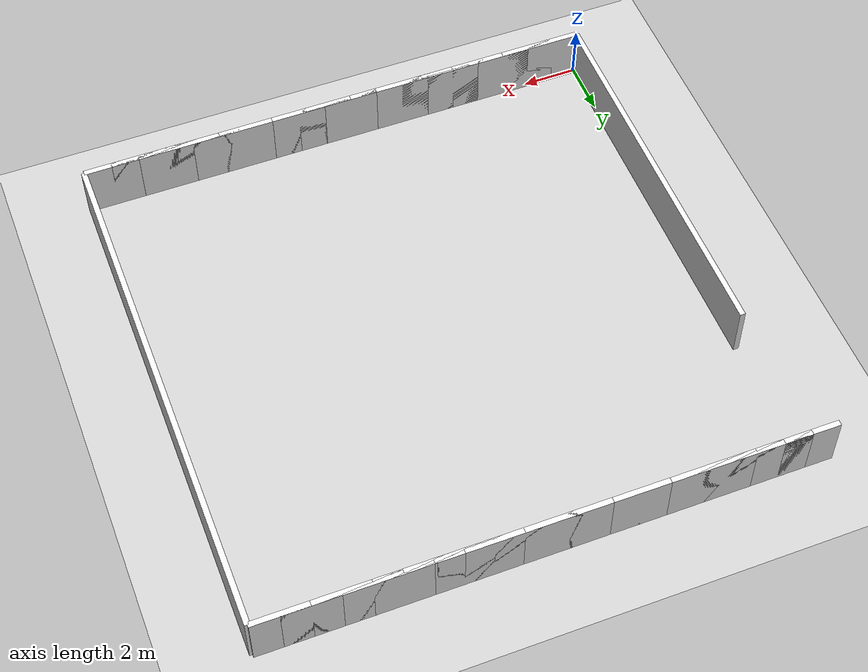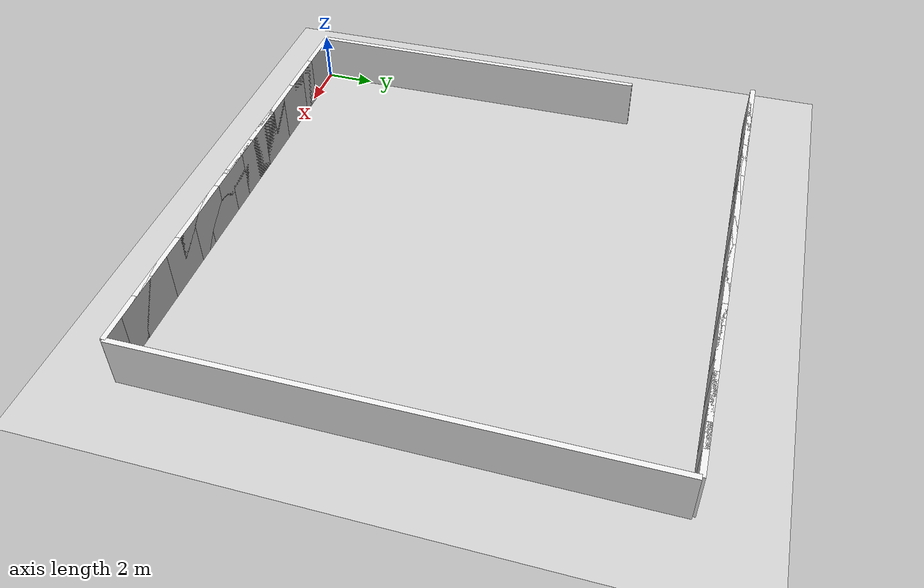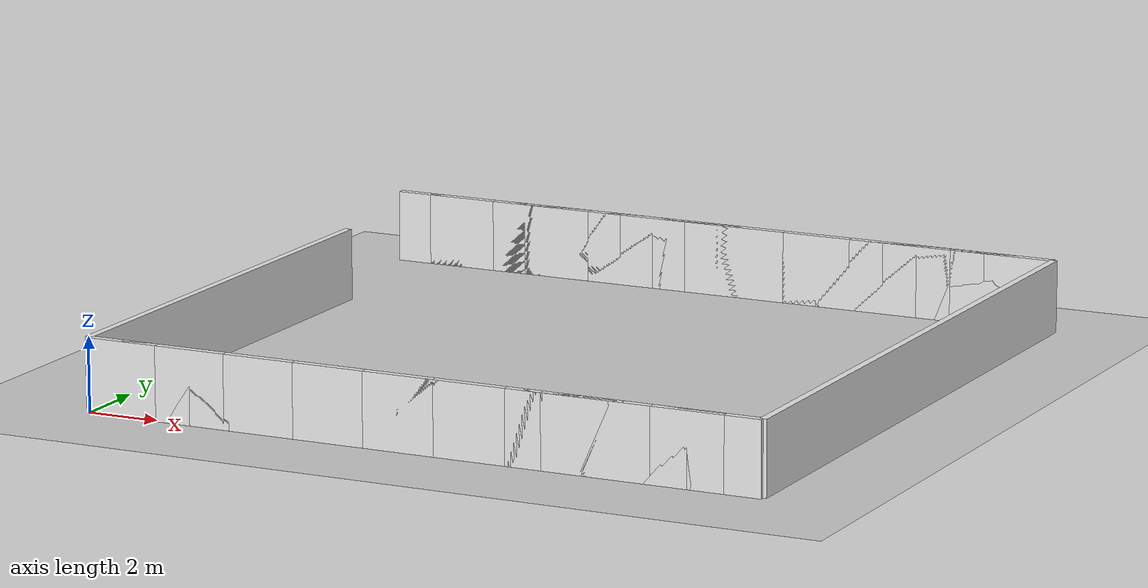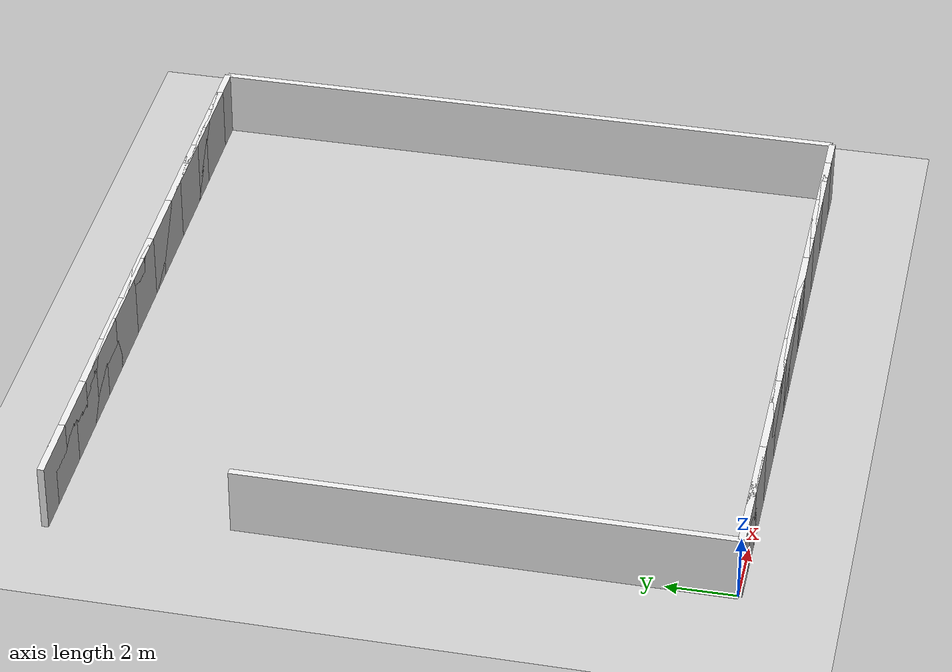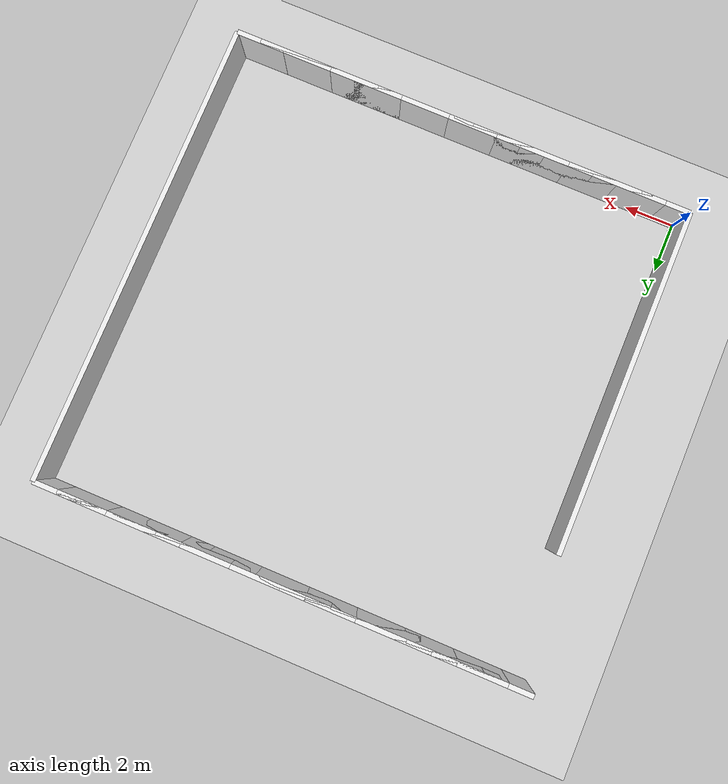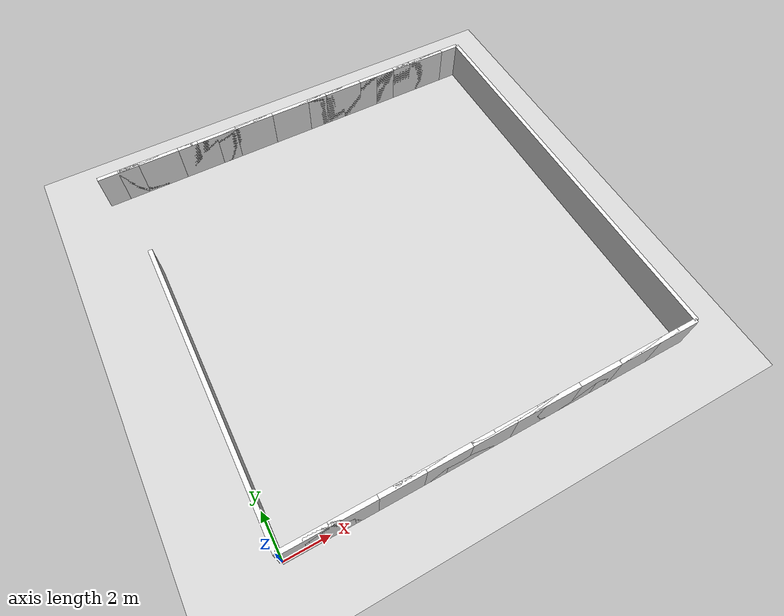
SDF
<sdf version="1.6">
 <world name="default">
  <scene><ambient>0.4 0.4 0.4 1</ambient><background>0.7 0.7 0.7 1</background><shadows>true</shadows></scene>
  <include><uri>model://sun</uri></include>
  <include><uri>model://ground_plane</uri></include>
  <physics type="ode">
   <gravity>0 0 -9.81</gravity>
   <real_time_update_rate>1000.0</real_time_update_rate>
   <max_step_size>0.001</max_step_size>
   <real_time_factor>1</real_time_factor>
   <ode>
    <solver>
     <type>quick</type>
     <iters>150</iters>
     <precon_iters>0</precon_iters>
     <sor>1.400000</sor>
     <use_dynamic_moi_rescaling>1</use_dynamic_moi_rescaling>
    </solver>
    <constraints>
     <cfm>0.00001</cfm>
     <erp>0.2</erp>
     <contact_max_correcting_vel>2000.000000</contact_max_correcting_vel>
     <contact_surface_layer>0.01000</contact_surface_layer>
    </constraints>
   </ode>
  </physics>
  <model name="box_0">
   <static>1</static>
   <pose>4.28626e-16 7 1 0 0 1.5708</pose>
   <link name="link">
    <collision name="collision"><geometry><box><size>14 0.2 2.000000</size></box></geometry></collision>
    <visual name="visual">
     <geometry><box><size>14 0.2 2.000000</size></box></geometry>
     <material>
      <script><uri>file://media/materials/scripts/gazebo.material</uri><name>Gazebo/White</name></script>
     </material>
    </visual>
   </link>
  </model>
  <model name="box_1">
   <static>1</static>
   <pose>0 19 1 0 0 0</pose>
   <link name="link">
    <collision name="collision"><geometry><box><size>2 0.2 2.000000</size></box></geometry></collision>
    <visual name="visual">
     <geometry><box><size>2 0.2 2.000000</size></box></geometry>
     <material>
      <script><uri>file://media/materials/scripts/gazebo.material</uri><name>Gazebo/White</name></script>
     </material>
    </visual>
   </link>
  </model>
  <model name="box_2">
   <static>1</static>
   <pose>1 0 1 0 0 0</pose>
   <link name="link">
    <collision name="collision"><geometry><box><size>2 0.2 2.000000</size></box></geometry></collision>
    <visual name="visual">
     <geometry><box><size>2 0.2 2.000000</size></box></geometry>
     <material>
      <script><uri>file://media/materials/scripts/gazebo.material</uri><name>Gazebo/White</name></script>
     </material>
    </visual>
   </link>
  </model>
  <model name="box_3">
   <static>1</static>
   <pose>1 19 1 0 0 0</pose>
   <link name="link">
    <collision name="collision"><geometry><box><size>2 0.2 2.000000</size></box></geometry></collision>
    <visual name="visual">
     <geometry><box><size>2 0.2 2.000000</size></box></geometry>
     <material>
      <script><uri>file://media/materials/scripts/gazebo.material</uri><name>Gazebo/White</name></script>
     </material>
    </visual>
   </link>
  </model>
  <model name="box_4">
   <static>1</static>
   <pose>2 0 1 0 0 0</pose>
   <link name="link">
    <collision name="collision"><geometry><box><size>2 0.2 2.000000</size></box></geometry></collision>
    <visual name="visual">
     <geometry><box><size>2 0.2 2.000000</size></box></geometry>
     <material>
      <script><uri>file://media/materials/scripts/gazebo.material</uri><name>Gazebo/White</name></script>
     </material>
    </visual>
   </link>
  </model>
  <model name="box_5">
   <static>1</static>
   <pose>2 19 1 0 0 0</pose>
   <link name="link">
    <collision name="collision"><geometry><box><size>2 0.2 2.000000</size></box></geometry></collision>
    <visual name="visual">
     <geometry><box><size>2 0.2 2.000000</size></box></geometry>
     <material>
      <script><uri>file://media/materials/scripts/gazebo.material</uri><name>Gazebo/White</name></script>
     </material>
    </visual>
   </link>
  </model>
  <model name="box_6">
   <static>1</static>
   <pose>3 0 1 0 0 0</pose>
   <link name="link">
    <collision name="collision"><geometry><box><size>2 0.2 2.000000</size></box></geometry></collision>
    <visual name="visual">
     <geometry><box><size>2 0.2 2.000000</size></box></geometry>
     <material>
      <script><uri>file://media/materials/scripts/gazebo.material</uri><name>Gazebo/White</name></script>
     </material>
    </visual>
   </link>
  </model>
  <model name="box_7">
   <static>1</static>
   <pose>3 19 1 0 0 0</pose>
   <link name="link">
    <collision name="collision"><geometry><box><size>2 0.2 2.000000</size></box></geometry></collision>
    <visual name="visual">
     <geometry><box><size>2 0.2 2.000000</size></box></geometry>
     <material>
      <script><uri>file://media/materials/scripts/gazebo.material</uri><name>Gazebo/White</name></script>
     </material>
    </visual>
   </link>
  </model>
  <model name="box_8">
   <static>1</static>
   <pose>4 0 1 0 0 0</pose>
   <link name="link">
    <collision name="collision"><geometry><box><size>2 0.2 2.000000</size></box></geometry></collision>
    <visual name="visual">
     <geometry><box><size>2 0.2 2.000000</size></box></geometry>
     <material>
      <script><uri>file://media/materials/scripts/gazebo.material</uri><name>Gazebo/White</name></script>
     </material>
    </visual>
   </link>
  </model>
  <model name="box_9">
   <static>1</static>
   <pose>4 19 1 0 0 0</pose>
   <link name="link">
    <collision name="collision"><geometry><box><size>2 0.2 2.000000</size></box></geometry></collision>
    <visual name="visual">
     <geometry><box><size>2 0.2 2.000000</size></box></geometry>
     <material>
      <script><uri>file://media/materials/scripts/gazebo.material</uri><name>Gazebo/White</name></script>
     </material>
    </visual>
   </link>
  </model>
  <model name="box_10">
   <static>1</static>
   <pose>5 0 1 0 0 0</pose>
   <link name="link">
    <collision name="collision"><geometry><box><size>2 0.2 2.000000</size></box></geometry></collision>
    <visual name="visual">
     <geometry><box><size>2 0.2 2.000000</size></box></geometry>
     <material>
      <script><uri>file://media/materials/scripts/gazebo.material</uri><name>Gazebo/White</name></script>
     </material>
    </visual>
   </link>
  </model>
  <model name="box_11">
   <static>1</static>
   <pose>5 19 1 0 0 0</pose>
   <link name="link">
    <collision name="collision"><geometry><box><size>2 0.2 2.000000</size></box></geometry></collision>
    <visual name="visual">
     <geometry><box><size>2 0.2 2.000000</size></box></geometry>
     <material>
      <script><uri>file://media/materials/scripts/gazebo.material</uri><name>Gazebo/White</name></script>
     </material>
    </visual>
   </link>
  </model>
  <model name="box_12">
   <static>1</static>
   <pose>6 0 1 0 0 0</pose>
   <link name="link">
    <collision name="collision"><geometry><box><size>2 0.2 2.000000</size></box></geometry></collision>
    <visual name="visual">
     <geometry><box><size>2 0.2 2.000000</size></box></geometry>
     <material>
      <script><uri>file://media/materials/scripts/gazebo.material</uri><name>Gazebo/White</name></script>
     </material>
    </visual>
   </link>
  </model>
  <model name="box_13">
   <static>1</static>
   <pose>6 19 1 0 0 0</pose>
   <link name="link">
    <collision name="collision"><geometry><box><size>2 0.2 2.000000</size></box></geometry></collision>
    <visual name="visual">
     <geometry><box><size>2 0.2 2.000000</size></box></geometry>
     <material>
      <script><uri>file://media/materials/scripts/gazebo.material</uri><name>Gazebo/White</name></script>
     </material>
    </visual>
   </link>
  </model>
  <model name="box_14">
   <static>1</static>
   <pose>7 0 1 0 0 0</pose>
   <link name="link">
    <collision name="collision"><geometry><box><size>2 0.2 2.000000</size></box></geometry></collision>
    <visual name="visual">
     <geometry><box><size>2 0.2 2.000000</size></box></geometry>
     <material>
      <script><uri>file://media/materials/scripts/gazebo.material</uri><name>Gazebo/White</name></script>
     </material>
    </visual>
   </link>
  </model>
  <model name="box_15">
   <static>1</static>
   <pose>7 19 1 0 0 0</pose>
   <link name="link">
    <collision name="collision"><geometry><box><size>2 0.2 2.000000</size></box></geometry></collision>
    <visual name="visual">
     <geometry><box><size>2 0.2 2.000000</size></box></geometry>
     <material>
      <script><uri>file://media/materials/scripts/gazebo.material</uri><name>Gazebo/White</name></script>
     </material>
    </visual>
   </link>
  </model>
  <model name="box_16">
   <static>1</static>
   <pose>8 0 1 0 0 0</pose>
   <link name="link">
    <collision name="collision"><geometry><box><size>2 0.2 2.000000</size></box></geometry></collision>
    <visual name="visual">
     <geometry><box><size>2 0.2 2.000000</size></box></geometry>
     <material>
      <script><uri>file://media/materials/scripts/gazebo.material</uri><name>Gazebo/White</name></script>
     </material>
    </visual>
   </link>
  </model>
  <model name="box_17">
   <static>1</static>
   <pose>8 19 1 0 0 0</pose>
   <link name="link">
    <collision name="collision"><geometry><box><size>2 0.2 2.000000</size></box></geometry></collision>
    <visual name="visual">
     <geometry><box><size>2 0.2 2.000000</size></box></geometry>
     <material>
      <script><uri>file://media/materials/scripts/gazebo.material</uri><name>Gazebo/White</name></script>
     </material>
    </visual>
   </link>
  </model>
  <model name="box_18">
   <static>1</static>
   <pose>9 0 1 0 0 0</pose>
   <link name="link">
    <collision name="collision"><geometry><box><size>2 0.2 2.000000</size></box></geometry></collision>
    <visual name="visual">
     <geometry><box><size>2 0.2 2.000000</size></box></geometry>
     <material>
      <script><uri>file://media/materials/scripts/gazebo.material</uri><name>Gazebo/White</name></script>
     </material>
    </visual>
   </link>
  </model>
  <model name="box_19">
   <static>1</static>
   <pose>9 19 1 0 0 0</pose>
   <link name="link">
    <collision name="collision"><geometry><box><size>2 0.2 2.000000</size></box></geometry></collision>
    <visual name="visual">
     <geometry><box><size>2 0.2 2.000000</size></box></geometry>
     <material>
      <script><uri>file://media/materials/scripts/gazebo.material</uri><name>Gazebo/White</name></script>
     </material>
    </visual>
   </link>
  </model>
  <model name="box_20">
   <static>1</static>
   <pose>10 0 1 0 0 0</pose>
   <link name="link">
    <collision name="collision"><geometry><box><size>2 0.2 2.000000</size></box></geometry></collision>
    <visual name="visual">
     <geometry><box><size>2 0.2 2.000000</size></box></geometry>
     <material>
      <script><uri>file://media/materials/scripts/gazebo.material</uri><name>Gazebo/White</name></script>
     </material>
    </visual>
   </link>
  </model>
  <model name="box_21">
   <static>1</static>
   <pose>10 19 1 0 0 0</pose>
   <link name="link">
    <collision name="collision"><geometry><box><size>2 0.2 2.000000</size></box></geometry></collision>
    <visual name="visual">
     <geometry><box><size>2 0.2 2.000000</size></box></geometry>
     <material>
      <script><uri>file://media/materials/scripts/gazebo.material</uri><name>Gazebo/White</name></script>
     </material>
    </visual>
   </link>
  </model>
  <model name="box_22">
   <static>1</static>
   <pose>11 0 1 0 0 0</pose>
   <link name="link">
    <collision name="collision"><geometry><box><size>2 0.2 2.000000</size></box></geometry></collision>
    <visual name="visual">
     <geometry><box><size>2 0.2 2.000000</size></box></geometry>
     <material>
      <script><uri>file://media/materials/scripts/gazebo.material</uri><name>Gazebo/White</name></script>
     </material>
    </visual>
   </link>
  </model>
  <model name="box_23">
   <static>1</static>
   <pose>11 19 1 0 0 0</pose>
   <link name="link">
    <collision name="collision"><geometry><box><size>2 0.2 2.000000</size></box></geometry></collision>
    <visual name="visual">
     <geometry><box><size>2 0.2 2.000000</size></box></geometry>
     <material>
      <script><uri>file://media/materials/scripts/gazebo.material</uri><name>Gazebo/White</name></script>
     </material>
    </visual>
   </link>
  </model>
  <model name="box_24">
   <static>1</static>
   <pose>12 0 1 0 0 0</pose>
   <link name="link">
    <collision name="collision"><geometry><box><size>2 0.2 2.000000</size></box></geometry></collision>
    <visual name="visual">
     <geometry><box><size>2 0.2 2.000000</size></box></geometry>
     <material>
      <script><uri>file://media/materials/scripts/gazebo.material</uri><name>Gazebo/White</name></script>
     </material>
    </visual>
   </link>
  </model>
  <model name="box_25">
   <static>1</static>
   <pose>12 19 1 0 0 0</pose>
   <link name="link">
    <collision name="collision"><geometry><box><size>2 0.2 2.000000</size></box></geometry></collision>
    <visual name="visual">
     <geometry><box><size>2 0.2 2.000000</size></box></geometry>
     <material>
      <script><uri>file://media/materials/scripts/gazebo.material</uri><name>Gazebo/White</name></script>
     </material>
    </visual>
   </link>
  </model>
  <model name="box_26">
   <static>1</static>
   <pose>13 0 1 0 0 0</pose>
   <link name="link">
    <collision name="collision"><geometry><box><size>2 0.2 2.000000</size></box></geometry></collision>
    <visual name="visual">
     <geometry><box><size>2 0.2 2.000000</size></box></geometry>
     <material>
      <script><uri>file://media/materials/scripts/gazebo.material</uri><name>Gazebo/White</name></script>
     </material>
    </visual>
   </link>
  </model>
  <model name="box_27">
   <static>1</static>
   <pose>13 19 1 0 0 0</pose>
   <link name="link">
    <collision name="collision"><geometry><box><size>2 0.2 2.000000</size></box></geometry></collision>
    <visual name="visual">
     <geometry><box><size>2 0.2 2.000000</size></box></geometry>
     <material>
      <script><uri>file://media/materials/scripts/gazebo.material</uri><name>Gazebo/White</name></script>
     </material>
    </visual>
   </link>
  </model>
  <model name="box_28">
   <static>1</static>
   <pose>14 0 1 0 0 0</pose>
   <link name="link">
    <collision name="collision"><geometry><box><size>2 0.2 2.000000</size></box></geometry></collision>
    <visual name="visual">
     <geometry><box><size>2 0.2 2.000000</size></box></geometry>
     <material>
      <script><uri>file://media/materials/scripts/gazebo.material</uri><name>Gazebo/White</name></script>
     </material>
    </visual>
   </link>
  </model>
  <model name="box_29">
   <static>1</static>
   <pose>14 19 1 0 0 0</pose>
   <link name="link">
    <collision name="collision"><geometry><box><size>2 0.2 2.000000</size></box></geometry></collision>
    <visual name="visual">
     <geometry><box><size>2 0.2 2.000000</size></box></geometry>
     <material>
      <script><uri>file://media/materials/scripts/gazebo.material</uri><name>Gazebo/White</name></script>
     </material>
    </visual>
   </link>
  </model>
  <model name="box_30">
   <static>1</static>
   <pose>15 0 1 0 0 0</pose>
   <link name="link">
    <collision name="collision"><geometry><box><size>2 0.2 2.000000</size></box></geometry></collision>
    <visual name="visual">
     <geometry><box><size>2 0.2 2.000000</size></box></geometry>
     <material>
      <script><uri>file://media/materials/scripts/gazebo.material</uri><name>Gazebo/White</name></script>
     </material>
    </visual>
   </link>
  </model>
  <model name="box_31">
   <static>1</static>
   <pose>15 19 1 0 0 0</pose>
   <link name="link">
    <collision name="collision"><geometry><box><size>2 0.2 2.000000</size></box></geometry></collision>
    <visual name="visual">
     <geometry><box><size>2 0.2 2.000000</size></box></geometry>
     <material>
      <script><uri>file://media/materials/scripts/gazebo.material</uri><name>Gazebo/White</name></script>
     </material>
    </visual>
   </link>
  </model>
  <model name="box_32">
   <static>1</static>
   <pose>16 0 1 0 0 0</pose>
   <link name="link">
    <collision name="collision"><geometry><box><size>2 0.2 2.000000</size></box></geometry></collision>
    <visual name="visual">
     <geometry><box><size>2 0.2 2.000000</size></box></geometry>
     <material>
      <script><uri>file://media/materials/scripts/gazebo.material</uri><name>Gazebo/White</name></script>
     </material>
    </visual>
   </link>
  </model>
  <model name="box_33">
   <static>1</static>
   <pose>16 19 1 0 0 0</pose>
   <link name="link">
    <collision name="collision"><geometry><box><size>2 0.2 2.000000</size></box></geometry></collision>
    <visual name="visual">
     <geometry><box><size>2 0.2 2.000000</size></box></geometry>
     <material>
      <script><uri>file://media/materials/scripts/gazebo.material</uri><name>Gazebo/White</name></script>
     </material>
    </visual>
   </link>
  </model>
  <model name="box_34">
   <static>1</static>
   <pose>17 0 1 0 0 0</pose>
   <link name="link">
    <collision name="collision"><geometry><box><size>2 0.2 2.000000</size></box></geometry></collision>
    <visual name="visual">
     <geometry><box><size>2 0.2 2.000000</size></box></geometry>
     <material>
      <script><uri>file://media/materials/scripts/gazebo.material</uri><name>Gazebo/White</name></script>
     </material>
    </visual>
   </link>
  </model>
  <model name="box_35">
   <static>1</static>
   <pose>17 19 1 0 0 0</pose>
   <link name="link">
    <collision name="collision"><geometry><box><size>2 0.2 2.000000</size></box></geometry></collision>
    <visual name="visual">
     <geometry><box><size>2 0.2 2.000000</size></box></geometry>
     <material>
      <script><uri>file://media/materials/scripts/gazebo.material</uri><name>Gazebo/White</name></script>
     </material>
    </visual>
   </link>
  </model>
  <model name="box_36">
   <static>1</static>
   <pose>18 0 1 0 0 0</pose>
   <link name="link">
    <collision name="collision"><geometry><box><size>2 0.2 2.000000</size></box></geometry></collision>
    <visual name="visual">
     <geometry><box><size>2 0.2 2.000000</size></box></geometry>
     <material>
      <script><uri>file://media/materials/scripts/gazebo.material</uri><name>Gazebo/White</name></script>
     </material>
    </visual>
   </link>
  </model>
  <model name="box_37">
   <static>1</static>
   <pose>18 19 1 0 0 0</pose>
   <link name="link">
    <collision name="collision"><geometry><box><size>2 0.2 2.000000</size></box></geometry></collision>
    <visual name="visual">
     <geometry><box><size>2 0.2 2.000000</size></box></geometry>
     <material>
      <script><uri>file://media/materials/scripts/gazebo.material</uri><name>Gazebo/White</name></script>
     </material>
    </visual>
   </link>
  </model>
  <model name="box_38">
   <static>1</static>
   <pose>19 9.5 1 0 0 1.5708</pose>
   <link name="link">
    <collision name="collision"><geometry><box><size>19 0.2 2.000000</size></box></geometry></collision>
    <visual name="visual">
     <geometry><box><size>19 0.2 2.000000</size></box></geometry>
     <material>
      <script><uri>file://media/materials/scripts/gazebo.material</uri><name>Gazebo/White</name></script>
     </material>
    </visual>
   </link>
  </model>
 </world>
</sdf>
